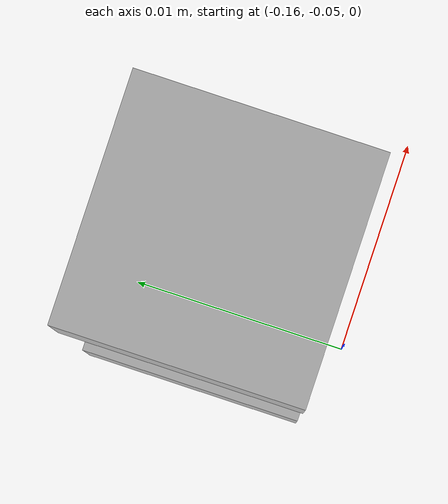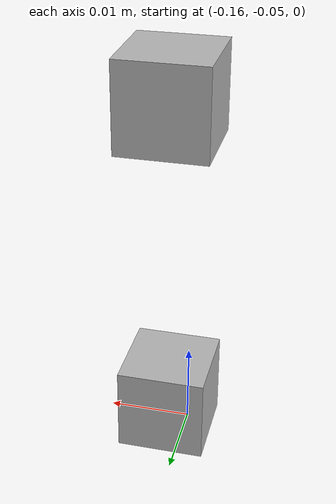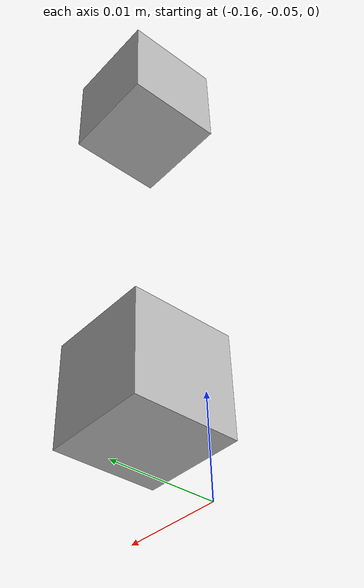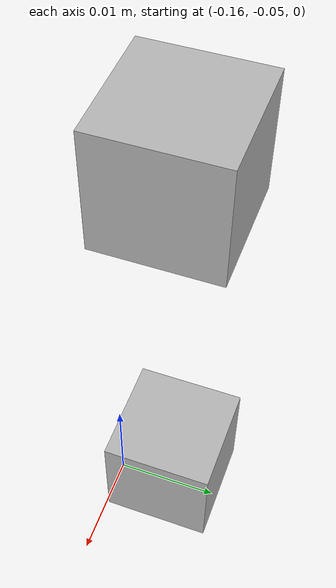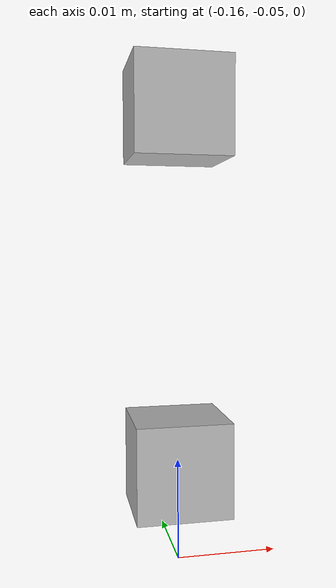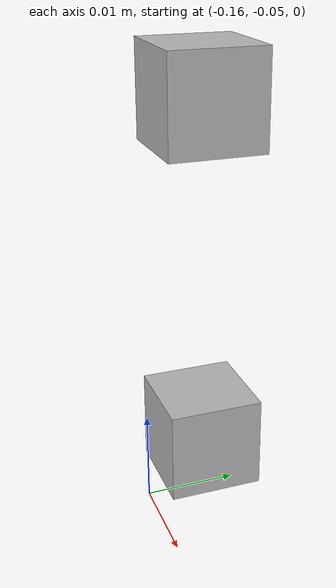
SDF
<?xml version='1.0'?>
<sdf version='1.6'>
    <model name='fpv_cam'>
    <pose>-0.158979 -0.04405 0.045074 0 -0 0</pose>
      <link name='link'>
        <inertial>
          <mass>0.015</mass>
          <inertia>
            <ixx>4.15e-6</ixx>
          <ixy>0</ixy>
          <ixz>0</ixz>
          <iyy>2.407e-6</iyy>
          <iyz>0</iyz>
          <izz>2.407e-6</izz>
          </inertia>
        </inertial>
        <collision name='collision'>
          <geometry>
            <box>
              <size>0.01 0.01 0.01</size>
            </box>
          </geometry>
          <max_contacts>10</max_contacts>
          <surface>
            <contact>
              <ode/>
            </contact>
            <bounce/>
            <friction>
              <ode/>
            </friction>
          </surface>
        </collision>
        <visual name='visual'>
          <geometry>
            <box>
              <size>0.01 0.01 0.01</size>
            </box>
          </geometry>
        </visual>
        <sensor name='camera' type='camera'>
          <camera name='cam_Frontal'>
            <horizontal_fov>1.047</horizontal_fov>
            <image>
              <width>320</width>
              <height>240</height>
            </image>
            <clip>
              <near>0.1</near>
              <far>100</far>
            </clip>
            <lens>
              <type>custom</type>
              <custom_function>
                <c1>1.05</c1>
                <c2>4</c2>
                <f>1</f>
                <fun>tan</fun>
              </custom_function>
              <scale_to_hfov>1</scale_to_hfov>
              <cutoff_angle>3.1415</cutoff_angle>
              <env_texture_size>1080</env_texture_size>
            </lens>
          </camera>
          <always_on>1</always_on>
          <update_rate>30</update_rate>
          <visualize>1</visualize>
          <plugin name='camera_plugin_Frontal' filename='libgazebo_ros_camera.so'>
              <robotNamespace></robotNamespace>
            <alwaysOn>true</alwaysOn>
            <imageTopicName>image_raw</imageTopicName>
            <cameraInfoTopicName>camera_info</cameraInfoTopicName>
            <updateRate>30.0</updateRate>
            <cameraName>cam_frontal</cameraName>
            <frameName>/robot_camera_link</frameName>
            <CxPrime>320.5</CxPrime>
            <Cx>320.5</Cx>
            <Cy>240.5</Cy>
            <hackBaseline>0</hackBaseline>
            <focalLength>277.191356</focalLength>
            <distortionK1>0.0</distortionK1>
            <distortionK2>0.0</distortionK2>
            <distortionK3>0.0</distortionK3>
            <distortionT1>0.0</distortionT1>
            <distortionT2>0.0</distortionT2>
          </plugin>
        </sensor>
        <self_collide>0</self_collide>
        <kinematic>0</kinematic>
      </link>
      <link name='cam_ventral'>
        <pose>0 0 -0.037 0 1.57 0</pose>
        <inertial>
          <mass>0.015</mass>
            <inertia>
              <ixx>4.15e-6</ixx>
              <ixy>0</ixy>
              <ixz>0</ixz>
              <iyy>2.407e-6</iyy>
              <iyz>0</iyz>
              <izz>2.407e-6</izz>
            </inertia>
        </inertial>
        <collision name='collision'>
          <geometry>
            <box>
              <size>0.01 0.01 0.01</size>
            </box>
          </geometry>
          <max_contacts>10</max_contacts>
          <surface>
            <contact>
              <ode/>
            </contact>
            <bounce/>
              <friction>
                <ode/>
              </friction>
          </surface>
        </collision>
        <visual name='visual'>
          <geometry>
            <box>
              <size>0.01 0.01 0.01</size>
            </box>
          </geometry>
        </visual>
        <sensor name='camera' type='camera'>
          <camera name='cam_ventral'>
            <horizontal_fov>1.047</horizontal_fov>
              <image>
                <width>320</width>
                <height>240</height>
              </image>
              <clip>
                <near>0.1</near>
                <far>100</far>
              </clip>
              <lens>
                <type>custom</type>
                <custom_function>
                  <c1>1.05</c1>
                  <c2>4</c2>
                  <f>1</f>
                  <fun>tan</fun>
                </custom_function>
                <scale_to_hfov>1</scale_to_hfov>
                <cutoff_angle>3.1415</cutoff_angle>
                <env_texture_size>1080</env_texture_size>
              </lens>
            </camera>
            <always_on>1</always_on>
            <update_rate>30</update_rate>
            <visualize>0</visualize>
            <plugin name='camera_plugin' filename='libgazebo_ros_camera.so'>
              <robotNamespace></robotNamespace>
              <alwaysOn>true</alwaysOn>
              <imageTopicName>image_raw</imageTopicName>
              <cameraInfoTopicName>camera_info</cameraInfoTopicName>
              <updateRate>30.0</updateRate>
              <cameraName>cam_ventral/</cameraName>
              <frameName>/robot_camera_link</frameName>
              <CxPrime>320.5</CxPrime>
              <Cx>320.5</Cx>
              <Cy>240.5</Cy>
              <hackBaseline>0</hackBaseline>
              <focalLength>277.191356</focalLength>
              <distortionK1>0.0</distortionK1>
              <distortionK2>0.0</distortionK2>
              <distortionK3>0.0</distortionK3>
              <distortionT1>0.0</distortionT1>
              <distortionT2>0.0</distortionT2>
            </plugin>
        </sensor>
        <self_collide>0</self_collide>
        <kinematic>0</kinematic>
      </link>

      <joint name="fpv_cam_joint_ventral" type="fixed">
        <child>cam_ventral</child>
        <parent>link</parent>
        <axis>
          <xyz>0 0 1</xyz>
          <limit>
            <upper>0</upper>
            <lower>0</lower>
          </limit>
        </axis>
      </joint>
  </model>
</sdf>
